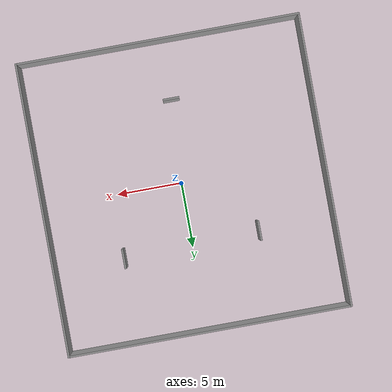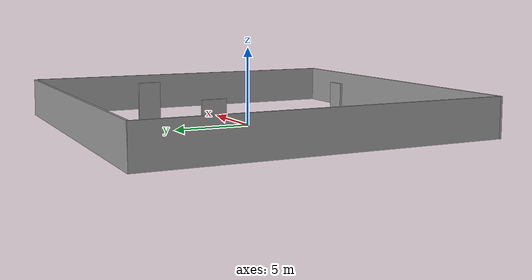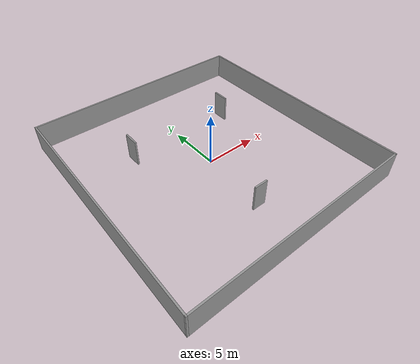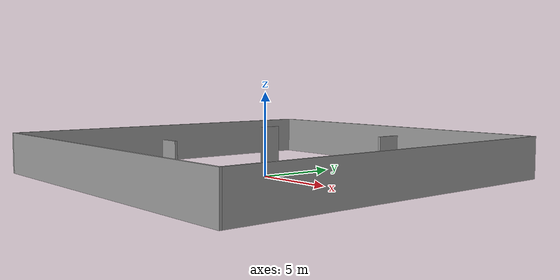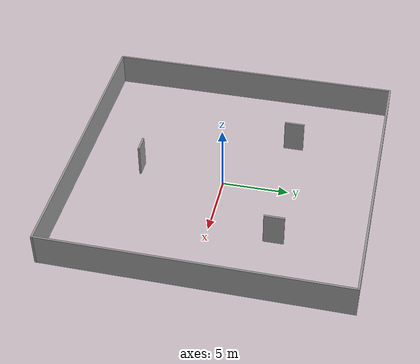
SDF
<?xml version='1.0'?>
<sdf version='1.7'>
  <model name='pillars'>
    <pose>-0.13591 0.17465 0 0 -0 0</pose>
    <link name='Wall_10'>
      <collision name='Wall_10_Collision'>
        <geometry>
          <box>
            <size>22.5 0.15 2.5</size>
          </box>
        </geometry>
        <pose>0 0 1.25 0 -0 0</pose>
      </collision>
      <visual name='Wall_10_Visual'>
        <pose>0 0 1.25 0 -0 0</pose>
        <geometry>
          <box>
            <size>22.5 0.15 2.5</size>
          </box>
        </geometry>
        <material>
          <script>
            <uri>file://media/materials/scripts/gazebo.material</uri>
            <name>Gazebo/Grey</name>
          </script>
          <ambient>1 1 1 1</ambient>
        </material>
        <meta>
          <layer>0</layer>
        </meta>
      </visual>
      <pose>10.8 -0 0 0 -0 -1.5708</pose>
    </link>
    <link name='Wall_11'>
      <collision name='Wall_11_Collision'>
        <geometry>
          <box>
            <size>21.75 0.15 2.5</size>
          </box>
        </geometry>
        <pose>0 0 1.25 0 -0 0</pose>
      </collision>
      <visual name='Wall_11_Visual'>
        <pose>0 0 1.25 0 -0 0</pose>
        <geometry>
          <box>
            <size>21.75 0.15 2.5</size>
          </box>
        </geometry>
        <material>
          <script>
            <uri>file://media/materials/scripts/gazebo.material</uri>
            <name>Gazebo/Grey</name>
          </script>
          <ambient>1 1 1 1</ambient>
        </material>
        <meta>
          <layer>0</layer>
        </meta>
      </visual>
      <pose>0 -11.175 0 0 -0 3.14159</pose>
    </link>
    <link name='Wall_12'>
      <collision name='Wall_12_Collision'>
        <geometry>
          <box>
            <size>22.5 0.15 2.5</size>
          </box>
        </geometry>
        <pose>0 0 1.25 0 -0 0</pose>
      </collision>
      <visual name='Wall_12_Visual'>
        <pose>0 0 1.25 0 -0 0</pose>
        <geometry>
          <box>
            <size>22.5 0.15 2.5</size>
          </box>
        </geometry>
        <material>
          <script>
            <uri>file://media/materials/scripts/gazebo.material</uri>
            <name>Gazebo/Grey</name>
          </script>
          <ambient>1 1 1 1</ambient>
        </material>
        <meta>
          <layer>0</layer>
        </meta>
      </visual>
      <pose>-10.8 -0 0 0 -0 1.5708</pose>
    </link>
    <link name='Wall_13'>
      <collision name='Wall_13_Collision'>
        <geometry>
          <box>
            <size>21.75 0.15 2.5</size>
          </box>
        </geometry>
        <pose>0 0 1.25 0 -0 0</pose>
      </collision>
      <visual name='Wall_13_Visual'>
        <pose>0 0 1.25 0 -0 0</pose>
        <geometry>
          <box>
            <size>21.75 0.15 2.5</size>
          </box>
        </geometry>
        <material>
          <script>
            <uri>file://media/materials/scripts/gazebo.material</uri>
            <name>Gazebo/Grey</name>
          </script>
          <ambient>1 1 1 1</ambient>
        </material>
        <meta>
          <layer>0</layer>
        </meta>
      </visual>
      <pose>0 11.175 0 0 -0 0</pose>
    </link>
    <link name='Wall_37'>
      <collision name='Wall_37_Collision'>
        <geometry>
          <box>
            <size>1.25 0.15 2.5</size>
          </box>
        </geometry>
        <pose>0 0 1.25 0 -0 0</pose>
      </collision>
      <visual name='Wall_37_Visual'>
        <pose>0 0 1.25 0 -0 0</pose>
        <geometry>
          <box>
            <size>1.25 0.15 2.5</size>
          </box>
        </geometry>
        <material>
          <script>
            <uri>file://media/materials/scripts/gazebo.material</uri>
            <name>Gazebo/Grey</name>
          </script>
          <ambient>1 1 1 1</ambient>
        </material>
        <meta>
          <layer>0</layer>
        </meta>
      </visual>
      <pose>-0.22839 -6.57435 0 0 -0 0</pose>
    </link>
    <link name='Wall_41'>
      <collision name='Wall_41_Collision'>
        <geometry>
          <box>
            <size>1.5 0.15 2.5</size>
          </box>
        </geometry>
        <pose>0 0 1.25 0 -0 0</pose>
      </collision>
      <visual name='Wall_41_Visual'>
        <pose>0 0 1.25 0 -0 0</pose>
        <geometry>
          <box>
            <size>1.5 0.15 2.5</size>
          </box>
        </geometry>
        <material>
          <script>
            <uri>file://media/materials/scripts/gazebo.material</uri>
            <name>Gazebo/Grey</name>
          </script>
          <ambient>1 1 1 1</ambient>
        </material>
        <meta>
          <layer>0</layer>
        </meta>
      </visual>
      <pose>5.41115 4.66337 0 0 -0 -1.5708</pose>
    </link>
    <link name='Wall_56'>
      <collision name='Wall_56_Collision'>
        <geometry>
          <box>
            <size>1.5 0.15 2.5</size>
          </box>
        </geometry>
        <pose>0 0 1.25 0 -0 0</pose>
      </collision>
      <visual name='Wall_56_Visual'>
        <pose>0 0 1.25 0 -0 0</pose>
        <geometry>
          <box>
            <size>1.5 0.15 2.5</size>
          </box>
        </geometry>
        <material>
          <script>
            <uri>file://media/materials/scripts/gazebo.material</uri>
            <name>Gazebo/Grey</name>
          </script>
          <ambient>1 1 1 1</ambient>
        </material>
        <meta>
          <layer>0</layer>
        </meta>
      </visual>
      <pose>-5.0199 4.38755 0 0 -0 -1.5708</pose>
    </link>
    <static>1</static>
  </model>
</sdf>
